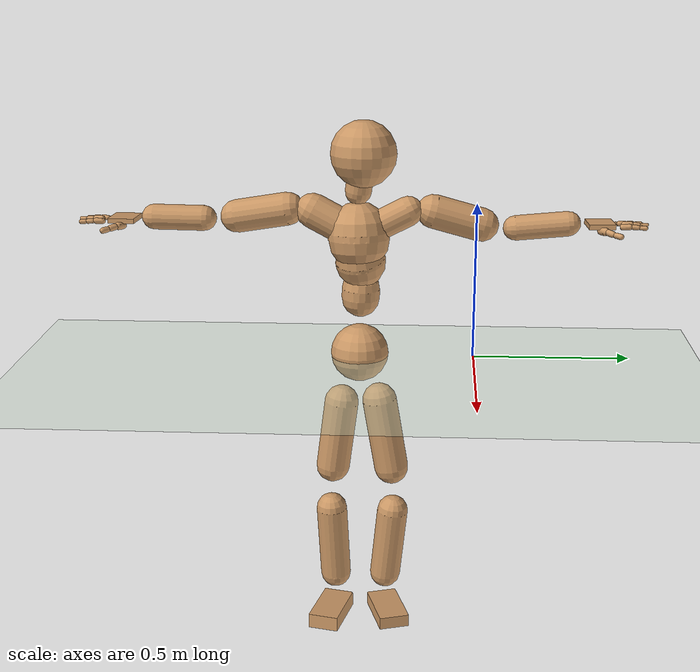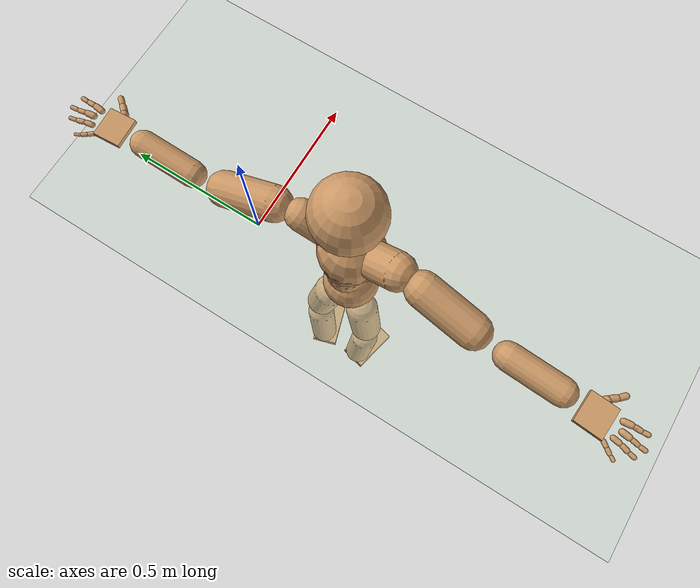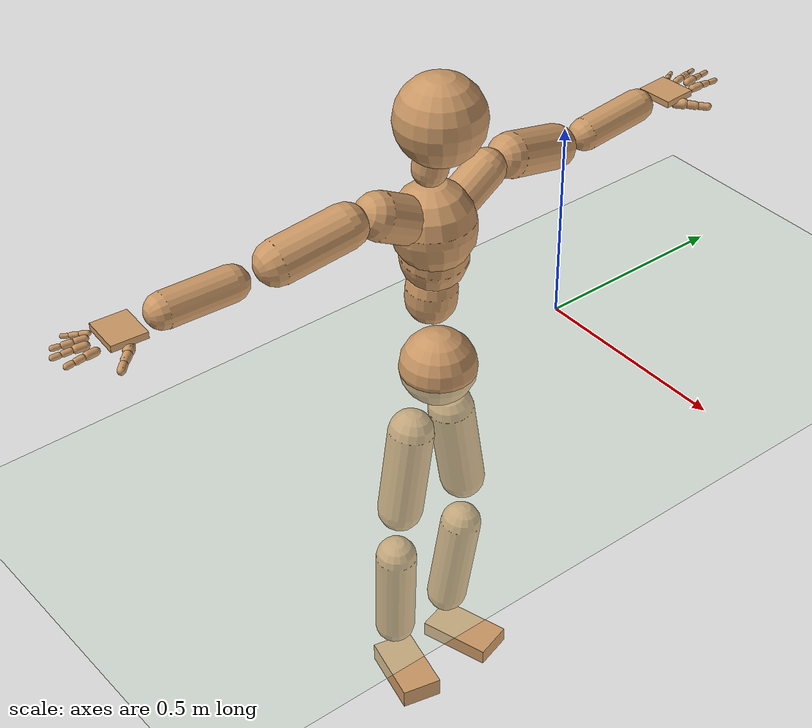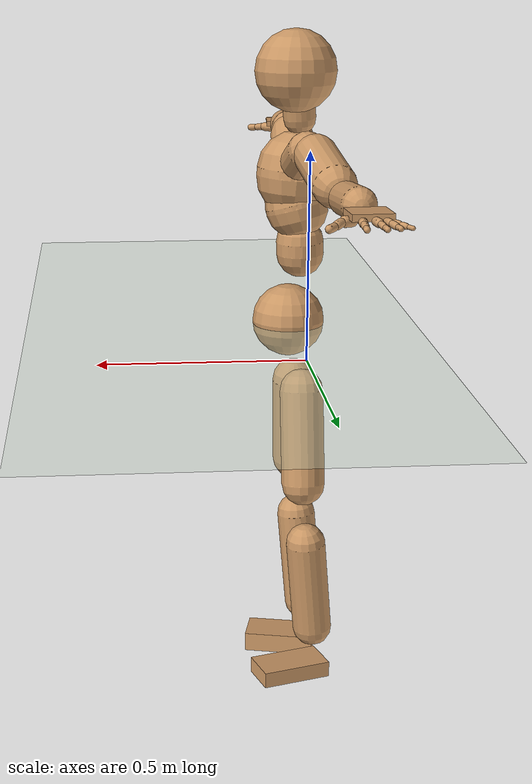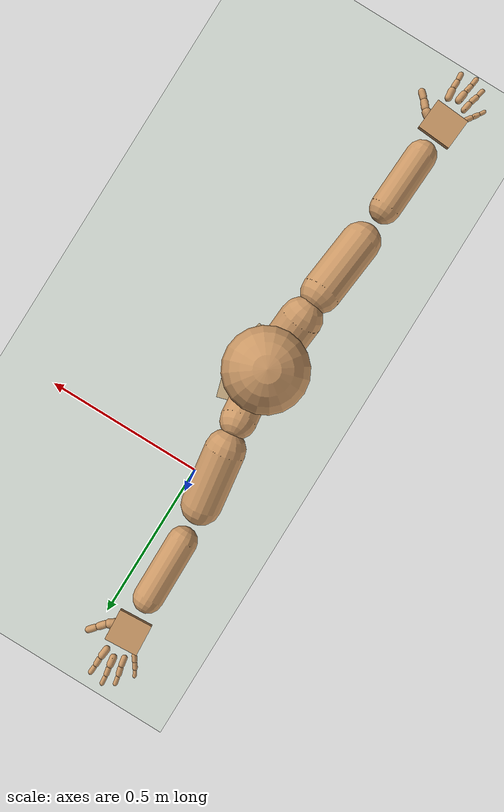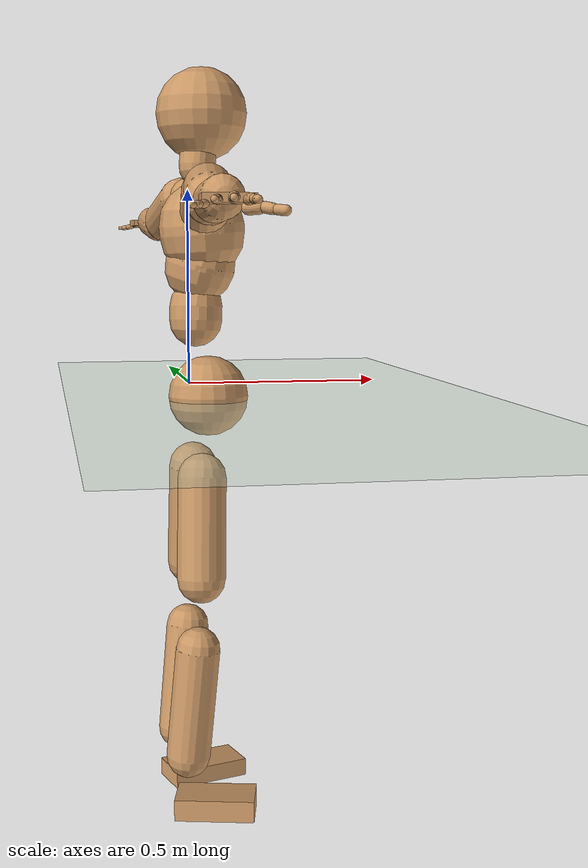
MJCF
<mujoco model="humanoid">
  <compiler coordinate="local" angle="radian"/>
  <default>
    <joint damping="0.0" armature="0.01" stiffness="0.0" limited="true"/>
    <geom conaffinity="1" condim="3" contype="7" margin="0.001" rgba="0.8 0.6 .4 1"/>
  </default>
  <asset>
    <texture type="skybox" builtin="gradient" rgb1=".4 .5 .6" rgb2="0 0 0" width="100" height="100"/>
    <texture builtin="flat" height="1278" mark="cross" markrgb="1 1 1" name="texgeom" random="0.01" rgb1="0.8 0.6 0.4" rgb2="0.8 0.6 0.4" type="cube" width="127"/>
    <texture builtin="checker" height="100" name="texplane" rgb1="0 0 0" rgb2="0.8 0.8 0.8" type="2d" width="100"/>
    <material name="MatPlane" reflectance="0.5" shininess="1" specular="1" texrepeat="60 60" texture="texplane"/>
    <material name="geom" texture="texgeom" texuniform="true"/>
  </asset>
  <worldbody>
    <light cutoff="100" diffuse="1 1 1" dir="-0 0 -1.3" directional="true" exponent="1" pos="0 0 1.3" specular=".1 .1 .1"/>
    <geom conaffinity="1" condim="3" name="floor" pos="0 0 0" rgba="0.8 0.9 0.8 1" size="100 100 .2" type="plane" material="MatPlane"/>
    <body name="Pelvis" pos="0.0008 -0.3688 0.0074">
      <freejoint name="Pelvis"/>
      <geom type="sphere" contype="1" conaffinity="1" density="500" size="0.0938" pos="0.0000 0.0000 0.0000" name="Pelvis"/>
      <body name="L_Hip" pos="-0.029 0.0503 -0.0944">
        <joint name="L_Hip_x" type="hinge" pos="0 0 0" axis="1 0 0" stiffness="800" damping="80" armature="0.02" range="-180.0000 180.0000"/>
        <joint name="L_Hip_y" type="hinge" pos="0 0 0" axis="0 1 0" stiffness="800" damping="80" armature="0.02" range="-180.0000 180.0000"/>
        <joint name="L_Hip_z" type="hinge" pos="0 0 0" axis="0 0 1" stiffness="800" damping="80" armature="0.02" range="-180.0000 180.0000"/>
        <geom type="capsule" contype="1" conaffinity="1" density="500" fromto="-0.0008 0.0136 -0.0818 -0.0033 0.0543 -0.3274" size="0.0568" name="L_Hip"/>
        <body name="L_Knee" pos="-0.0041 0.0679 -0.4092">
          <joint name="L_Knee_x" type="hinge" pos="0 0 0" axis="1 0 0" stiffness="800" damping="80" armature="0.02" range="-180.0000 180.0000"/>
          <joint name="L_Knee_y" type="hinge" pos="0 0 0" axis="0 1 0" stiffness="800" damping="80" armature="0.02" range="-180.0000 180.0000"/>
          <joint name="L_Knee_z" type="hinge" pos="0 0 0" axis="0 0 1" stiffness="800" damping="80" armature="0.02" range="-180.0000 180.0000"/>
          <geom type="capsule" contype="1" conaffinity="1" density="500" fromto="-0.0082 -0.0086 -0.0851 -0.0326 -0.0343 -0.3405" size="0.0523" name="L_Knee"/>
          <body name="L_Ankle" pos="-0.0408 -0.0428 -0.4256">
            <joint name="L_Ankle_x" type="hinge" pos="0 0 0" axis="1 0 0" stiffness="800" damping="80" armature="0.02" range="-180.0000 180.0000"/>
            <joint name="L_Ankle_y" type="hinge" pos="0 0 0" axis="0 1 0" stiffness="800" damping="80" armature="0.02" range="-180.0000 180.0000"/>
            <joint name="L_Ankle_z" type="hinge" pos="0 0 0" axis="0 0 1" stiffness="800" damping="80" armature="0.02" range="-180.0000 180.0000"/>
            <geom type="box" contype="1" conaffinity="1" density="500" pos="0.0684 0.0206 -0.0308" size="0.0941 0.0515 0.0211" quat="0.9893 0.0000 0.0000 0.1460" name="L_Ankle"/>
            <body name="L_Toe" pos="0.1368 0.0413 -0.0615">
              <joint name="L_Toe_x" type="hinge" pos="0 0 0" axis="1 0 0" stiffness="500" damping="50" armature="0.02" range="-180.0000 180.0000"/>
              <joint name="L_Toe_y" type="hinge" pos="0 0 0" axis="0 1 0" stiffness="500" damping="50" armature="0.02" range="-180.0000 180.0000"/>
              <joint name="L_Toe_z" type="hinge" pos="0 0 0" axis="0 0 1" stiffness="500" damping="50" armature="0.02" range="-180.0000 180.0000"/>
              <geom type="box" contype="1" conaffinity="1" density="500" pos="0.0000 0.0000 0.0309" size="0.001 0.0025 0.0011" quat="0.9886 0.0000 0.0000 0.1505" name="L_Toe"/>
            </body>
          </body>
        </body>
      </body>
      <body name="R_Hip" pos="-0.0223 -0.0521 -0.105">
        <joint name="R_Hip_x" type="hinge" pos="0 0 0" axis="1 0 0" stiffness="800" damping="80" armature="0.02" range="-180.0000 180.0000"/>
        <joint name="R_Hip_y" type="hinge" pos="0 0 0" axis="0 1 0" stiffness="800" damping="80" armature="0.02" range="-180.0000 180.0000"/>
        <joint name="R_Hip_z" type="hinge" pos="0 0 0" axis="0 0 1" stiffness="800" damping="80" armature="0.02" range="-180.0000 180.0000"/>
        <geom type="capsule" contype="1" conaffinity="1" density="500" fromto="-0.0023 -0.0104 -0.0783 -0.0093 -0.0417 -0.3134" size="0.0565" name="R_Hip"/>
        <body name="R_Knee" pos="-0.0117 -0.0521 -0.3917">
          <joint name="R_Knee_x" type="hinge" pos="0 0 0" axis="1 0 0" stiffness="800" damping="80" armature="0.02" range="-180.0000 180.0000"/>
          <joint name="R_Knee_y" type="hinge" pos="0 0 0" axis="0 1 0" stiffness="800" damping="80" armature="0.02" range="-180.0000 180.0000"/>
          <joint name="R_Knee_z" type="hinge" pos="0 0 0" axis="0 0 1" stiffness="800" damping="80" armature="0.02" range="-180.0000 180.0000"/>
          <geom type="capsule" contype="1" conaffinity="1" density="500" fromto="-0.0079 0.0034 -0.0880 -0.0315 0.0135 -0.3518" size="0.0518" name="R_Knee"/>
          <body name="R_Ankle" pos="-0.0393 0.0169 -0.4398">
            <joint name="R_Ankle_x" type="hinge" pos="0 0 0" axis="1 0 0" stiffness="800" damping="80" armature="0.02" range="-180.0000 180.0000"/>
            <joint name="R_Ankle_y" type="hinge" pos="0 0 0" axis="0 1 0" stiffness="800" damping="80" armature="0.02" range="-180.0000 180.0000"/>
            <joint name="R_Ankle_z" type="hinge" pos="0 0 0" axis="0 0 1" stiffness="800" damping="80" armature="0.02" range="-180.0000 180.0000"/>
            <geom type="box" contype="1" conaffinity="1" density="500" pos="0.0716 -0.0166 -0.0303" size="0.0941 0.0515 0.0256" quat="0.9935 0.0000 0.0000 -0.1138" name="R_Ankle"/>
            <body name="R_Toe" pos="0.1432 -0.0332 -0.0607">
              <joint name="R_Toe_x" type="hinge" pos="0 0 0" axis="1 0 0" stiffness="500" damping="50" armature="0.02" range="-180.0000 180.0000"/>
              <joint name="R_Toe_y" type="hinge" pos="0 0 0" axis="0 1 0" stiffness="500" damping="50" armature="0.02" range="-180.0000 180.0000"/>
              <joint name="R_Toe_z" type="hinge" pos="0 0 0" axis="0 0 1" stiffness="500" damping="50" armature="0.02" range="-180.0000 180.0000"/>
              <geom type="box" contype="1" conaffinity="1" density="500" pos="0.0000 0.0000 0.0260" size="0.001 0.0025 0.0011" quat="0.9944 0.0000 0.0000 -0.1058" name="R_Toe"/>
            </body>
          </body>
        </body>
      </body>
      <body name="Torso" pos="-0.0307 -0.0014 0.1133">
        <joint name="Torso_x" type="hinge" pos="0 0 0" axis="1 0 0" stiffness="1000" damping="100" armature="0.02" range="-180.0000 180.0000"/>
        <joint name="Torso_y" type="hinge" pos="0 0 0" axis="0 1 0" stiffness="1000" damping="100" armature="0.02" range="-180.0000 180.0000"/>
        <joint name="Torso_z" type="hinge" pos="0 0 0" axis="0 0 1" stiffness="1000" damping="100" armature="0.02" range="-180.0000 180.0000"/>
        <geom type="capsule" contype="1" conaffinity="1" density="500" fromto="0.0033 0.0045 0.0955 0.0022 0.0030 0.0637" size="0.0613" name="Torso"/>
        <body name="Spine" pos="0.0055 0.0075 0.1591">
          <joint name="Spine_x" type="hinge" pos="0 0 0" axis="1 0 0" stiffness="1000" damping="100" armature="0.02" range="-180.0000 180.0000"/>
          <joint name="Spine_y" type="hinge" pos="0 0 0" axis="0 1 0" stiffness="1000" damping="100" armature="0.02" range="-180.0000 180.0000"/>
          <joint name="Spine_z" type="hinge" pos="0 0 0" axis="0 0 1" stiffness="1000" damping="100" armature="0.02" range="-180.0000 180.0000"/>
          <geom type="capsule" contype="1" conaffinity="1" density="500" fromto="0.0096 -0.0045 0.0358 0.0064 -0.0030 0.0239" size="0.0804" name="Spine"/>
          <body name="Chest" pos="0.016 -0.0074 0.0597">
            <joint name="Chest_x" type="hinge" pos="0 0 0" axis="1 0 0" stiffness="1000" damping="100" armature="0.02" range="-180.0000 180.0000"/>
            <joint name="Chest_y" type="hinge" pos="0 0 0" axis="0 1 0" stiffness="1000" damping="100" armature="0.02" range="-180.0000 180.0000"/>
            <joint name="Chest_z" type="hinge" pos="0 0 0" axis="0 0 1" stiffness="1000" damping="100" armature="0.02" range="-180.0000 180.0000"/>
            <geom type="capsule" contype="1" conaffinity="1" density="500" fromto="-0.0048 -0.0016 0.0629 -0.0032 -0.0010 0.0419" size="0.0983" name="Chest"/>
            <body name="Neck" pos="-0.0177 -0.0076 0.1623">
              <joint name="Neck_x" type="hinge" pos="0 0 0" axis="1 0 0" stiffness="500" damping="50" armature="0.02" range="-180.0000 180.0000"/>
              <joint name="Neck_y" type="hinge" pos="0 0 0" axis="0 1 0" stiffness="500" damping="50" armature="0.02" range="-180.0000 180.0000"/>
              <joint name="Neck_z" type="hinge" pos="0 0 0" axis="0 0 1" stiffness="500" damping="50" armature="0.02" range="-180.0000 180.0000"/>
              <geom type="capsule" contype="1" conaffinity="1" density="500" fromto="0.0033 0.0044 0.0300 0.0132 0.0178 0.1200" size="0.0418" name="Neck"/>
              <body name="Head" pos="0.0165 0.0222 0.1499">
                <joint name="Head_x" type="hinge" pos="0 0 0" axis="1 0 0" stiffness="500" damping="50" armature="0.02" range="-180.0000 180.0000"/>
                <joint name="Head_y" type="hinge" pos="0 0 0" axis="0 1 0" stiffness="500" damping="50" armature="0.02" range="-180.0000 180.0000"/>
                <joint name="Head_z" type="hinge" pos="0 0 0" axis="0 0 1" stiffness="500" damping="50" armature="0.02" range="-180.0000 180.0000"/>
                <geom type="sphere" contype="1" conaffinity="1" density="500" size="0.1045" pos="0.0000 0.0000 0.0000" name="Head"/>
              </body>
            </body>
            <body name="L_Thorax" pos="-0.001 0.0421 0.0759">
              <joint name="L_Thorax_x" type="hinge" pos="0 0 0" axis="1 0 0" stiffness="500" damping="50" armature="0.02" range="-180.0000 180.0000"/>
              <joint name="L_Thorax_y" type="hinge" pos="0 0 0" axis="0 1 0" stiffness="500" damping="50" armature="0.02" range="-180.0000 180.0000"/>
              <joint name="L_Thorax_z" type="hinge" pos="0 0 0" axis="0 0 1" stiffness="500" damping="50" armature="0.02" range="-180.0000 180.0000"/>
              <geom type="capsule" contype="1" conaffinity="1" density="500" fromto="-0.0030 0.0280 0.0139 -0.0119 0.1118 0.0558" size="0.0474" name="L_Thorax"/>
              <body name="L_Shoulder" pos="-0.0149 0.1398 0.0697">
                <joint name="L_Shoulder_x" type="hinge" pos="0 0 0" axis="1 0 0" stiffness="500" damping="50" armature="0.02" range="-180.0000 180.0000"/>
                <joint name="L_Shoulder_y" type="hinge" pos="0 0 0" axis="0 1 0" stiffness="500" damping="50" armature="0.02" range="-180.0000 180.0000"/>
                <joint name="L_Shoulder_z" type="hinge" pos="0 0 0" axis="0 0 1" stiffness="500" damping="50" armature="0.02" range="-180.0000 180.0000"/>
                <geom type="capsule" contype="1" conaffinity="1" density="500" fromto="-0.0078 0.0516 -0.0157 -0.0313 0.2063 -0.0626" size="0.0533" name="L_Shoulder"/>
                <body name="L_Elbow" pos="-0.0392 0.2579 -0.0783">
                  <joint name="L_Elbow_x" type="hinge" pos="0 0 0" axis="1 0 0" stiffness="500" damping="50" armature="0.02" range="-720.0000 720.0000"/>
                  <joint name="L_Elbow_y" type="hinge" pos="0 0 0" axis="0 1 0" stiffness="500" damping="50" armature="0.02" range="-720.0000 720.0000"/>
                  <joint name="L_Elbow_z" type="hinge" pos="0 0 0" axis="0 0 1" stiffness="500" damping="50" armature="0.02" range="-720.0000 720.0000"/>
                  <geom type="capsule" contype="1" conaffinity="1" density="500" fromto="-0.0005 0.0554 0.0050 -0.0020 0.2216 0.0202" size="0.0398" name="L_Elbow"/>
                  <body name="L_Wrist" pos="-0.0025 0.277 0.0252">
                    <joint name="L_Wrist_x" type="hinge" pos="0 0 0" axis="1 0 0" stiffness="300" damping="30" armature="0.02" range="-180.0000 180.0000"/>
                    <joint name="L_Wrist_y" type="hinge" pos="0 0 0" axis="0 1 0" stiffness="300" damping="30" armature="0.02" range="-180.0000 180.0000"/>
                    <joint name="L_Wrist_z" type="hinge" pos="0 0 0" axis="0 0 1" stiffness="300" damping="30" armature="0.02" range="-180.0000 180.0000"/>
                    <geom type="box" contype="1" conaffinity="1" density="500" pos="-0.0029 0.0457 -0.0061" size="0.0422 0.0455 0.0078" quat="0.7290 0.0000 0.0000 -0.6845" name="L_Wrist"/>
                    <body name="L_Index1" pos="0.0207 0.1072 -0.0096">
                      <joint name="L_Index1_x" type="hinge" pos="0 0 0" axis="1 0 0" stiffness="100" damping="10" armature="0.02" range="-180.0000 180.0000"/>
                      <joint name="L_Index1_y" type="hinge" pos="0 0 0" axis="0 1 0" stiffness="100" damping="10" armature="0.02" range="-180.0000 180.0000"/>
                      <joint name="L_Index1_z" type="hinge" pos="0 0 0" axis="0 0 1" stiffness="100" damping="10" armature="0.02" range="-180.0000 180.0000"/>
                      <geom type="capsule" contype="1" conaffinity="1" density="500" fromto="0.0007 0.0067 0.0003 0.0028 0.0270 0.0012" size="0.0094" name="L_Index1"/>
                      <body name="L_Index2" pos="0.0035 0.0337 0.0015">
                        <joint name="L_Index2_x" type="hinge" pos="0 0 0" axis="1 0 0" stiffness="100" damping="10" armature="0.02" range="-180.0000 180.0000"/>
                        <joint name="L_Index2_y" type="hinge" pos="0 0 0" axis="0 1 0" stiffness="100" damping="10" armature="0.02" range="-180.0000 180.0000"/>
                        <joint name="L_Index2_z" type="hinge" pos="0 0 0" axis="0 0 1" stiffness="100" damping="10" armature="0.02" range="-180.0000 180.0000"/>
                        <geom type="capsule" contype="1" conaffinity="1" density="500" fromto="-0.0001 0.0048 -0.0006 -0.0003 0.0191 -0.0022" size="0.0078" name="L_Index2"/>
                        <body name="L_Index3" pos="-0.0003 0.0239 -0.0028">
                          <joint name="L_Index3_x" type="hinge" pos="0 0 0" axis="1 0 0" stiffness="100" damping="10" armature="0.02" range="-180.0000 180.0000"/>
                          <joint name="L_Index3_y" type="hinge" pos="0 0 0" axis="0 1 0" stiffness="100" damping="10" armature="0.02" range="-180.0000 180.0000"/>
                          <joint name="L_Index3_z" type="hinge" pos="0 0 0" axis="0 0 1" stiffness="100" damping="10" armature="0.02" range="-180.0000 180.0000"/>
                          <geom type="capsule" contype="1" conaffinity="1" density="500" fromto="0.0003 0.0052 -0.0002 0.0013 0.0207 -0.0006" size="0.0067" name="L_Index3"/>
                        </body>
                      </body>
                    </body>
                    <body name="L_Middle1" pos="-0.0035 0.1154 -0.0069">
                      <joint name="L_Middle1_x" type="hinge" pos="0 0 0" axis="1 0 0" stiffness="100" damping="10" armature="0.02" range="-180.0000 180.0000"/>
                      <joint name="L_Middle1_y" type="hinge" pos="0 0 0" axis="0 1 0" stiffness="100" damping="10" armature="0.02" range="-180.0000 180.0000"/>
                      <joint name="L_Middle1_z" type="hinge" pos="0 0 0" axis="0 0 1" stiffness="100" damping="10" armature="0.02" range="-180.0000 180.0000"/>
                      <geom type="capsule" contype="1" conaffinity="1" density="500" fromto="-0.0009 0.0064 0.0001 -0.0035 0.0258 0.0002" size="0.0096" name="L_Middle1"/>
                      <body name="L_Middle2" pos="-0.0044 0.0322 0.0003">
                        <joint name="L_Middle2_x" type="hinge" pos="0 0 0" axis="1 0 0" stiffness="100" damping="10" armature="0.02" range="-180.0000 180.0000"/>
                        <joint name="L_Middle2_y" type="hinge" pos="0 0 0" axis="0 1 0" stiffness="100" damping="10" armature="0.02" range="-180.0000 180.0000"/>
                        <joint name="L_Middle2_z" type="hinge" pos="0 0 0" axis="0 0 1" stiffness="100" damping="10" armature="0.02" range="-180.0000 180.0000"/>
                        <geom type="capsule" contype="1" conaffinity="1" density="500" fromto="-0.0009 0.0050 -0.0005 -0.0036 0.0198 -0.0021" size="0.0072" name="L_Middle2"/>
                        <body name="L_Middle3" pos="-0.0045 0.0248 -0.0026">
                          <joint name="L_Middle3_x" type="hinge" pos="0 0 0" axis="1 0 0" stiffness="100" damping="10" armature="0.02" range="-180.0000 180.0000"/>
                          <joint name="L_Middle3_y" type="hinge" pos="0 0 0" axis="0 1 0" stiffness="100" damping="10" armature="0.02" range="-180.0000 180.0000"/>
                          <joint name="L_Middle3_z" type="hinge" pos="0 0 0" axis="0 0 1" stiffness="100" damping="10" armature="0.02" range="-180.0000 180.0000"/>
                          <geom type="capsule" contype="1" conaffinity="1" density="500" fromto="-0.0005 0.0054 -0.0001 -0.0020 0.0214 -0.0005" size="0.0064" name="L_Middle3"/>
                        </body>
                      </body>
                    </body>
                    <body name="L_Pinky1" pos="-0.0454 0.0892 -0.0151">
                      <joint name="L_Pinky1_x" type="hinge" pos="0 0 0" axis="1 0 0" stiffness="100" damping="10" armature="0.02" range="-180.0000 180.0000"/>
                      <joint name="L_Pinky1_y" type="hinge" pos="0 0 0" axis="0 1 0" stiffness="100" damping="10" armature="0.02" range="-180.0000 180.0000"/>
                      <joint name="L_Pinky1_z" type="hinge" pos="0 0 0" axis="0 0 1" stiffness="100" damping="10" armature="0.02" range="-180.0000 180.0000"/>
                      <geom type="capsule" contype="1" conaffinity="1" density="500" fromto="-0.0024 0.0034 -0.0003 -0.0096 0.0137 -0.0013" size="0.0069" name="L_Pinky1"/>
                      <body name="L_Pinky2" pos="-0.012 0.0171 -0.0017">
                        <joint name="L_Pinky2_x" type="hinge" pos="0 0 0" axis="1 0 0" stiffness="100" damping="10" armature="0.02" range="-180.0000 180.0000"/>
                        <joint name="L_Pinky2_y" type="hinge" pos="0 0 0" axis="0 1 0" stiffness="100" damping="10" armature="0.02" range="-180.0000 180.0000"/>
                        <joint name="L_Pinky2_z" type="hinge" pos="0 0 0" axis="0 0 1" stiffness="100" damping="10" armature="0.02" range="-180.0000 180.0000"/>
                        <geom type="capsule" contype="1" conaffinity="1" density="500" fromto="-0.0023 0.0034 -0.0004 -0.0091 0.0134 -0.0016" size="0.0066" name="L_Pinky2"/>
                        <body name="L_Pinky3" pos="-0.0114 0.0168 -0.0019">
                          <joint name="L_Pinky3_x" type="hinge" pos="0 0 0" axis="1 0 0" stiffness="100" damping="10" armature="0.02" range="-180.0000 180.0000"/>
                          <joint name="L_Pinky3_y" type="hinge" pos="0 0 0" axis="0 1 0" stiffness="100" damping="10" armature="0.02" range="-180.0000 180.0000"/>
                          <joint name="L_Pinky3_z" type="hinge" pos="0 0 0" axis="0 0 1" stiffness="100" damping="10" armature="0.02" range="-180.0000 180.0000"/>
                          <geom type="capsule" contype="1" conaffinity="1" density="500" fromto="-0.0019 0.0038 0.0000 -0.0075 0.0150 0.0000" size="0.005" name="L_Pinky3"/>
                        </body>
                      </body>
                    </body>
                    <body name="L_Ring1" pos="-0.0279 0.103 -0.0097">
                      <joint name="L_Ring1_x" type="hinge" pos="0 0 0" axis="1 0 0" stiffness="100" damping="10" armature="0.02" range="-180.0000 180.0000"/>
                      <joint name="L_Ring1_y" type="hinge" pos="0 0 0" axis="0 1 0" stiffness="100" damping="10" armature="0.02" range="-180.0000 180.0000"/>
                      <joint name="L_Ring1_z" type="hinge" pos="0 0 0" axis="0 0 1" stiffness="100" damping="10" armature="0.02" range="-180.0000 180.0000"/>
                      <geom type="capsule" contype="1" conaffinity="1" density="500" fromto="-0.0010 0.0060 0.0001 -0.0041 0.0238 0.0005" size="0.0081" name="L_Ring1"/>
                      <body name="L_Ring2" pos="-0.0051 0.0298 0.0006">
                        <joint name="L_Ring2_x" type="hinge" pos="0 0 0" axis="1 0 0" stiffness="100" damping="10" armature="0.02" range="-180.0000 180.0000"/>
                        <joint name="L_Ring2_y" type="hinge" pos="0 0 0" axis="0 1 0" stiffness="100" damping="10" armature="0.02" range="-180.0000 180.0000"/>
                        <joint name="L_Ring2_z" type="hinge" pos="0 0 0" axis="0 0 1" stiffness="100" damping="10" armature="0.02" range="-180.0000 180.0000"/>
                        <geom type="capsule" contype="1" conaffinity="1" density="500" fromto="-0.0014 0.0048 -0.0005 -0.0055 0.0193 -0.0018" size="0.0077" name="L_Ring2"/>
                        <body name="L_Ring3" pos="-0.0069 0.0242 -0.0023">
                          <joint name="L_Ring3_x" type="hinge" pos="0 0 0" axis="1 0 0" stiffness="100" damping="10" armature="0.02" range="-180.0000 180.0000"/>
                          <joint name="L_Ring3_y" type="hinge" pos="0 0 0" axis="0 1 0" stiffness="100" damping="10" armature="0.02" range="-180.0000 180.0000"/>
                          <joint name="L_Ring3_z" type="hinge" pos="0 0 0" axis="0 0 1" stiffness="100" damping="10" armature="0.02" range="-180.0000 180.0000"/>
                          <geom type="capsule" contype="1" conaffinity="1" density="500" fromto="-0.0010 0.0052 -0.0001 -0.0039 0.0209 -0.0002" size="0.006" name="L_Ring3"/>
                        </body>
                      </body>
                    </body>
                    <body name="L_Thumb1" pos="0.0272 0.0426 -0.0201">
                      <joint name="L_Thumb1_x" type="hinge" pos="0 0 0" axis="1 0 0" stiffness="100" damping="10" armature="0.02" range="-180.0000 180.0000"/>
                      <joint name="L_Thumb1_y" type="hinge" pos="0 0 0" axis="0 1 0" stiffness="100" damping="10" armature="0.02" range="-180.0000 180.0000"/>
                      <joint name="L_Thumb1_z" type="hinge" pos="0 0 0" axis="0 0 1" stiffness="100" damping="10" armature="0.02" range="-180.0000 180.0000"/>
                      <geom type="capsule" contype="1" conaffinity="1" density="500" fromto="0.0055 0.0035 0.0003 0.0218 0.0142 0.0012" size="0.0126" name="L_Thumb1"/>
                      <body name="L_Thumb2" pos="0.0273 0.0177 0.0015">
                        <joint name="L_Thumb2_x" type="hinge" pos="0 0 0" axis="1 0 0" stiffness="100" damping="10" armature="0.02" range="-180.0000 180.0000"/>
                        <joint name="L_Thumb2_y" type="hinge" pos="0 0 0" axis="0 1 0" stiffness="100" damping="10" armature="0.02" range="-180.0000 180.0000"/>
                        <joint name="L_Thumb2_z" type="hinge" pos="0 0 0" axis="0 0 1" stiffness="100" damping="10" armature="0.02" range="-180.0000 180.0000"/>
                        <geom type="capsule" contype="1" conaffinity="1" density="500" fromto="0.0034 0.0043 -0.0010 0.0138 0.0171 -0.0038" size="0.0101" name="L_Thumb2"/>
                        <body name="L_Thumb3" pos="0.0172 0.0214 -0.0048">
                          <joint name="L_Thumb3_x" type="hinge" pos="0 0 0" axis="1 0 0" stiffness="100" damping="10" armature="0.02" range="-180.0000 180.0000"/>
                          <joint name="L_Thumb3_y" type="hinge" pos="0 0 0" axis="0 1 0" stiffness="100" damping="10" armature="0.02" range="-180.0000 180.0000"/>
                          <joint name="L_Thumb3_z" type="hinge" pos="0 0 0" axis="0 0 1" stiffness="100" damping="10" armature="0.02" range="-180.0000 180.0000"/>
                          <geom type="capsule" contype="1" conaffinity="1" density="500" fromto="0.0038 0.0047 -0.0006 0.0154 0.0187 -0.0022" size="0.0091" name="L_Thumb3"/>
                        </body>
                      </body>
                    </body>
                  </body>
                </body>
              </body>
            </body>
            <body name="R_Thorax" pos="-0.0053 -0.0423 0.0762">
              <joint name="R_Thorax_x" type="hinge" pos="0 0 0" axis="1 0 0" stiffness="500" damping="50" armature="0.02" range="-180.0000 180.0000"/>
              <joint name="R_Thorax_y" type="hinge" pos="0 0 0" axis="0 1 0" stiffness="500" damping="50" armature="0.02" range="-180.0000 180.0000"/>
              <joint name="R_Thorax_z" type="hinge" pos="0 0 0" axis="0 0 1" stiffness="500" damping="50" armature="0.02" range="-180.0000 180.0000"/>
              <geom type="capsule" contype="1" conaffinity="1" density="500" fromto="-0.0017 -0.0261 0.0135 -0.0069 -0.1043 0.0541" size="0.0556" name="R_Thorax"/>
              <body name="R_Shoulder" pos="-0.0086 -0.1304 0.0677">
                <joint name="R_Shoulder_x" type="hinge" pos="0 0 0" axis="1 0 0" stiffness="500" damping="50" armature="0.02" range="-180.0000 180.0000"/>
                <joint name="R_Shoulder_y" type="hinge" pos="0 0 0" axis="0 1 0" stiffness="500" damping="50" armature="0.02" range="-180.0000 180.0000"/>
                <joint name="R_Shoulder_z" type="hinge" pos="0 0 0" axis="0 0 1" stiffness="500" damping="50" armature="0.02" range="-180.0000 180.0000"/>
                <geom type="capsule" contype="1" conaffinity="1" density="500" fromto="-0.0061 -0.0550 -0.0099 -0.0244 -0.2202 -0.0396" size="0.0525" name="R_Shoulder"/>
                <body name="R_Elbow" pos="-0.0304 -0.2752 -0.0495">
                  <joint name="R_Elbow_x" type="hinge" pos="0 0 0" axis="1 0 0" stiffness="500" damping="50" armature="0.02" range="-720.0000 720.0000"/>
                  <joint name="R_Elbow_y" type="hinge" pos="0 0 0" axis="0 1 0" stiffness="500" damping="50" armature="0.02" range="-720.0000 720.0000"/>
                  <joint name="R_Elbow_z" type="hinge" pos="0 0 0" axis="0 0 1" stiffness="500" damping="50" armature="0.02" range="-720.0000 720.0000"/>
                  <geom type="capsule" contype="1" conaffinity="1" density="500" fromto="-0.0024 -0.0536 0.0003 -0.0097 -0.2146 0.0014" size="0.0408" name="R_Elbow"/>
                  <body name="R_Wrist" pos="-0.0121 -0.2682 0.0017">
                    <joint name="R_Wrist_x" type="hinge" pos="0 0 0" axis="1 0 0" stiffness="300" damping="30" armature="0.02" range="-180.0000 180.0000"/>
                    <joint name="R_Wrist_y" type="hinge" pos="0 0 0" axis="0 1 0" stiffness="300" damping="30" armature="0.02" range="-180.0000 180.0000"/>
                    <joint name="R_Wrist_z" type="hinge" pos="0 0 0" axis="0 0 1" stiffness="300" damping="30" armature="0.02" range="-180.0000 180.0000"/>
                    <geom type="box" contype="1" conaffinity="1" density="500" pos="-0.0034 -0.0455 -0.0078" size="0.0422 0.0469 0.0079" quat="0.7327 0.0000 0.0000 0.6805" name="R_Wrist"/>
                    <body name="R_Index1" pos="0.0198 -0.1068 -0.013">
                      <joint name="R_Index1_x" type="hinge" pos="0 0 0" axis="1 0 0" stiffness="100" damping="10" armature="0.02" range="-180.0000 180.0000"/>
                      <joint name="R_Index1_y" type="hinge" pos="0 0 0" axis="0 1 0" stiffness="100" damping="10" armature="0.02" range="-180.0000 180.0000"/>
                      <joint name="R_Index1_z" type="hinge" pos="0 0 0" axis="0 0 1" stiffness="100" damping="10" armature="0.02" range="-180.0000 180.0000"/>
                      <geom type="capsule" contype="1" conaffinity="1" density="500" fromto="0.0007 -0.0067 0.0003 0.0028 -0.0270 0.0012" size="0.0094" name="R_Index1"/>
                      <body name="R_Index2" pos="0.0035 -0.0337 0.0015">
                        <joint name="R_Index2_x" type="hinge" pos="0 0 0" axis="1 0 0" stiffness="100" damping="10" armature="0.02" range="-180.0000 180.0000"/>
                        <joint name="R_Index2_y" type="hinge" pos="0 0 0" axis="0 1 0" stiffness="100" damping="10" armature="0.02" range="-180.0000 180.0000"/>
                        <joint name="R_Index2_z" type="hinge" pos="0 0 0" axis="0 0 1" stiffness="100" damping="10" armature="0.02" range="-180.0000 180.0000"/>
                        <geom type="capsule" contype="1" conaffinity="1" density="500" fromto="-0.0001 -0.0048 -0.0006 -0.0003 -0.0191 -0.0022" size="0.0078" name="R_Index2"/>
                        <body name="R_Index3" pos="-0.0003 -0.0239 -0.0028">
                          <joint name="R_Index3_x" type="hinge" pos="0 0 0" axis="1 0 0" stiffness="100" damping="10" armature="0.02" range="-180.0000 180.0000"/>
                          <joint name="R_Index3_y" type="hinge" pos="0 0 0" axis="0 1 0" stiffness="100" damping="10" armature="0.02" range="-180.0000 180.0000"/>
                          <joint name="R_Index3_z" type="hinge" pos="0 0 0" axis="0 0 1" stiffness="100" damping="10" armature="0.02" range="-180.0000 180.0000"/>
                          <geom type="capsule" contype="1" conaffinity="1" density="500" fromto="0.0003 -0.0044 -0.0002 0.0013 -0.0175 -0.0006" size="0.007" name="R_Index3"/>
                        </body>
                      </body>
                    </body>
                    <body name="R_Middle1" pos="-0.0045 -0.115 -0.0103">
                      <joint name="R_Middle1_x" type="hinge" pos="0 0 0" axis="1 0 0" stiffness="100" damping="10" armature="0.02" range="-180.0000 180.0000"/>
                      <joint name="R_Middle1_y" type="hinge" pos="0 0 0" axis="0 1 0" stiffness="100" damping="10" armature="0.02" range="-180.0000 180.0000"/>
                      <joint name="R_Middle1_z" type="hinge" pos="0 0 0" axis="0 0 1" stiffness="100" damping="10" armature="0.02" range="-180.0000 180.0000"/>
                      <geom type="capsule" contype="1" conaffinity="1" density="500" fromto="-0.0009 -0.0064 0.0001 -0.0035 -0.0258 0.0002" size="0.0096" name="R_Middle1"/>
                      <body name="R_Middle2" pos="-0.0044 -0.0322 0.0003">
                        <joint name="R_Middle2_x" type="hinge" pos="0 0 0" axis="1 0 0" stiffness="100" damping="10" armature="0.02" range="-180.0000 180.0000"/>
                        <joint name="R_Middle2_y" type="hinge" pos="0 0 0" axis="0 1 0" stiffness="100" damping="10" armature="0.02" range="-180.0000 180.0000"/>
                        <joint name="R_Middle2_z" type="hinge" pos="0 0 0" axis="0 0 1" stiffness="100" damping="10" armature="0.02" range="-180.0000 180.0000"/>
                        <geom type="capsule" contype="1" conaffinity="1" density="500" fromto="-0.0009 -0.0050 -0.0005 -0.0036 -0.0198 -0.0021" size="0.0072" name="R_Middle2"/>
                        <body name="R_Middle3" pos="-0.0045 -0.0248 -0.0026">
                          <joint name="R_Middle3_x" type="hinge" pos="0 0 0" axis="1 0 0" stiffness="100" damping="10" armature="0.02" range="-180.0000 180.0000"/>
                          <joint name="R_Middle3_y" type="hinge" pos="0 0 0" axis="0 1 0" stiffness="100" damping="10" armature="0.02" range="-180.0000 180.0000"/>
                          <joint name="R_Middle3_z" type="hinge" pos="0 0 0" axis="0 0 1" stiffness="100" damping="10" armature="0.02" range="-180.0000 180.0000"/>
                          <geom type="capsule" contype="1" conaffinity="1" density="500" fromto="-0.0005 -0.0046 -0.0001 -0.0020 -0.0182 -0.0005" size="0.0067" name="R_Middle3"/>
                        </body>
                      </body>
                    </body>
                    <body name="R_Pinky1" pos="-0.0463 -0.0888 -0.0185">
                      <joint name="R_Pinky1_x" type="hinge" pos="0 0 0" axis="1 0 0" stiffness="100" damping="10" armature="0.02" range="-180.0000 180.0000"/>
                      <joint name="R_Pinky1_y" type="hinge" pos="0 0 0" axis="0 1 0" stiffness="100" damping="10" armature="0.02" range="-180.0000 180.0000"/>
                      <joint name="R_Pinky1_z" type="hinge" pos="0 0 0" axis="0 0 1" stiffness="100" damping="10" armature="0.02" range="-180.0000 180.0000"/>
                      <geom type="capsule" contype="1" conaffinity="1" density="500" fromto="-0.0024 -0.0034 -0.0003 -0.0096 -0.0137 -0.0013" size="0.0069" name="R_Pinky1"/>
                      <body name="R_Pinky2" pos="-0.012 -0.0171 -0.0017">
                        <joint name="R_Pinky2_x" type="hinge" pos="0 0 0" axis="1 0 0" stiffness="100" damping="10" armature="0.02" range="-180.0000 180.0000"/>
                        <joint name="R_Pinky2_y" type="hinge" pos="0 0 0" axis="0 1 0" stiffness="100" damping="10" armature="0.02" range="-180.0000 180.0000"/>
                        <joint name="R_Pinky2_z" type="hinge" pos="0 0 0" axis="0 0 1" stiffness="100" damping="10" armature="0.02" range="-180.0000 180.0000"/>
                        <geom type="capsule" contype="1" conaffinity="1" density="500" fromto="-0.0023 -0.0034 -0.0004 -0.0091 -0.0134 -0.0016" size="0.0066" name="R_Pinky2"/>
                        <body name="R_Pinky3" pos="-0.0114 -0.0168 -0.002">
                          <joint name="R_Pinky3_x" type="hinge" pos="0 0 0" axis="1 0 0" stiffness="100" damping="10" armature="0.02" range="-180.0000 180.0000"/>
                          <joint name="R_Pinky3_y" type="hinge" pos="0 0 0" axis="0 1 0" stiffness="100" damping="10" armature="0.02" range="-180.0000 180.0000"/>
                          <joint name="R_Pinky3_z" type="hinge" pos="0 0 0" axis="0 0 1" stiffness="100" damping="10" armature="0.02" range="-180.0000 180.0000"/>
                          <geom type="capsule" contype="1" conaffinity="1" density="500" fromto="-0.0019 -0.0030 0.0000 -0.0075 -0.0118 0.0000" size="0.0053" name="R_Pinky3"/>
                        </body>
                      </body>
                    </body>
                    <body name="R_Ring1" pos="-0.0289 -0.1026 -0.0131">
                      <joint name="R_Ring1_x" type="hinge" pos="0 0 0" axis="1 0 0" stiffness="100" damping="10" armature="0.02" range="-180.0000 180.0000"/>
                      <joint name="R_Ring1_y" type="hinge" pos="0 0 0" axis="0 1 0" stiffness="100" damping="10" armature="0.02" range="-180.0000 180.0000"/>
                      <joint name="R_Ring1_z" type="hinge" pos="0 0 0" axis="0 0 1" stiffness="100" damping="10" armature="0.02" range="-180.0000 180.0000"/>
                      <geom type="capsule" contype="1" conaffinity="1" density="500" fromto="-0.0010 -0.0060 0.0001 -0.0041 -0.0238 0.0005" size="0.0081" name="R_Ring1"/>
                      <body name="R_Ring2" pos="-0.0051 -0.0298 0.0006">
                        <joint name="R_Ring2_x" type="hinge" pos="0 0 0" axis="1 0 0" stiffness="100" damping="10" armature="0.02" range="-180.0000 180.0000"/>
                        <joint name="R_Ring2_y" type="hinge" pos="0 0 0" axis="0 1 0" stiffness="100" damping="10" armature="0.02" range="-180.0000 180.0000"/>
                        <joint name="R_Ring2_z" type="hinge" pos="0 0 0" axis="0 0 1" stiffness="100" damping="10" armature="0.02" range="-180.0000 180.0000"/>
                        <geom type="capsule" contype="1" conaffinity="1" density="500" fromto="-0.0014 -0.0048 -0.0005 -0.0055 -0.0193 -0.0018" size="0.0077" name="R_Ring2"/>
                        <body name="R_Ring3" pos="-0.0069 -0.0242 -0.0023">
                          <joint name="R_Ring3_x" type="hinge" pos="0 0 0" axis="1 0 0" stiffness="100" damping="10" armature="0.02" range="-180.0000 180.0000"/>
                          <joint name="R_Ring3_y" type="hinge" pos="0 0 0" axis="0 1 0" stiffness="100" damping="10" armature="0.02" range="-180.0000 180.0000"/>
                          <joint name="R_Ring3_z" type="hinge" pos="0 0 0" axis="0 0 1" stiffness="100" damping="10" armature="0.02" range="-180.0000 180.0000"/>
                          <geom type="capsule" contype="1" conaffinity="1" density="500" fromto="-0.0010 -0.0044 -0.0001 -0.0039 -0.0177 -0.0002" size="0.0063" name="R_Ring3"/>
                        </body>
                      </body>
                    </body>
                    <body name="R_Thumb1" pos="0.0263 -0.0422 -0.0235">
                      <joint name="R_Thumb1_x" type="hinge" pos="0 0 0" axis="1 0 0" stiffness="100" damping="10" armature="0.02" range="-180.0000 180.0000"/>
                      <joint name="R_Thumb1_y" type="hinge" pos="0 0 0" axis="0 1 0" stiffness="100" damping="10" armature="0.02" range="-180.0000 180.0000"/>
                      <joint name="R_Thumb1_z" type="hinge" pos="0 0 0" axis="0 0 1" stiffness="100" damping="10" armature="0.02" range="-180.0000 180.0000"/>
                      <geom type="capsule" contype="1" conaffinity="1" density="500" fromto="0.0055 -0.0035 0.0003 0.0218 -0.0142 0.0012" size="0.0126" name="R_Thumb1"/>
                      <body name="R_Thumb2" pos="0.0273 -0.0177 0.0015">
                        <joint name="R_Thumb2_x" type="hinge" pos="0 0 0" axis="1 0 0" stiffness="100" damping="10" armature="0.02" range="-180.0000 180.0000"/>
                        <joint name="R_Thumb2_y" type="hinge" pos="0 0 0" axis="0 1 0" stiffness="100" damping="10" armature="0.02" range="-180.0000 180.0000"/>
                        <joint name="R_Thumb2_z" type="hinge" pos="0 0 0" axis="0 0 1" stiffness="100" damping="10" armature="0.02" range="-180.0000 180.0000"/>
                        <geom type="capsule" contype="1" conaffinity="1" density="500" fromto="0.0034 -0.0043 -0.0010 0.0138 -0.0171 -0.0038" size="0.0101" name="R_Thumb2"/>
                        <body name="R_Thumb3" pos="0.0172 -0.0214 -0.0048">
                          <joint name="R_Thumb3_x" type="hinge" pos="0 0 0" axis="1 0 0" stiffness="100" damping="10" armature="0.02" range="-180.0000 180.0000"/>
                          <joint name="R_Thumb3_y" type="hinge" pos="0 0 0" axis="0 1 0" stiffness="100" damping="10" armature="0.02" range="-180.0000 180.0000"/>
                          <joint name="R_Thumb3_z" type="hinge" pos="0 0 0" axis="0 0 1" stiffness="100" damping="10" armature="0.02" range="-180.0000 180.0000"/>
                          <geom type="capsule" contype="1" conaffinity="1" density="500" fromto="0.0038 -0.0039 -0.0006 0.0154 -0.0155 -0.0022" size="0.0094" name="R_Thumb3"/>
                        </body>
                      </body>
                    </body>
                  </body>
                </body>
              </body>
            </body>
          </body>
        </body>
      </body>
    </body>
  </worldbody>
  <actuator>
    <motor name="L_Hip_x" joint="L_Hip_x" gear="500"/>
    <motor name="L_Hip_y" joint="L_Hip_y" gear="500"/>
    <motor name="L_Hip_z" joint="L_Hip_z" gear="500"/>
    <motor name="L_Knee_x" joint="L_Knee_x" gear="500"/>
    <motor name="L_Knee_y" joint="L_Knee_y" gear="500"/>
    <motor name="L_Knee_z" joint="L_Knee_z" gear="500"/>
    <motor name="L_Ankle_x" joint="L_Ankle_x" gear="500"/>
    <motor name="L_Ankle_y" joint="L_Ankle_y" gear="500"/>
    <motor name="L_Ankle_z" joint="L_Ankle_z" gear="500"/>
    <motor name="L_Toe_x" joint="L_Toe_x" gear="500"/>
    <motor name="L_Toe_y" joint="L_Toe_y" gear="500"/>
    <motor name="L_Toe_z" joint="L_Toe_z" gear="500"/>
    <motor name="R_Hip_x" joint="R_Hip_x" gear="500"/>
    <motor name="R_Hip_y" joint="R_Hip_y" gear="500"/>
    <motor name="R_Hip_z" joint="R_Hip_z" gear="500"/>
    <motor name="R_Knee_x" joint="R_Knee_x" gear="500"/>
    <motor name="R_Knee_y" joint="R_Knee_y" gear="500"/>
    <motor name="R_Knee_z" joint="R_Knee_z" gear="500"/>
    <motor name="R_Ankle_x" joint="R_Ankle_x" gear="500"/>
    <motor name="R_Ankle_y" joint="R_Ankle_y" gear="500"/>
    <motor name="R_Ankle_z" joint="R_Ankle_z" gear="500"/>
    <motor name="R_Toe_x" joint="R_Toe_x" gear="500"/>
    <motor name="R_Toe_y" joint="R_Toe_y" gear="500"/>
    <motor name="R_Toe_z" joint="R_Toe_z" gear="500"/>
    <motor name="Torso_x" joint="Torso_x" gear="500"/>
    <motor name="Torso_y" joint="Torso_y" gear="500"/>
    <motor name="Torso_z" joint="Torso_z" gear="500"/>
    <motor name="Spine_x" joint="Spine_x" gear="500"/>
    <motor name="Spine_y" joint="Spine_y" gear="500"/>
    <motor name="Spine_z" joint="Spine_z" gear="500"/>
    <motor name="Chest_x" joint="Chest_x" gear="500"/>
    <motor name="Chest_y" joint="Chest_y" gear="500"/>
    <motor name="Chest_z" joint="Chest_z" gear="500"/>
    <motor name="Neck_x" joint="Neck_x" gear="500"/>
    <motor name="Neck_y" joint="Neck_y" gear="500"/>
    <motor name="Neck_z" joint="Neck_z" gear="500"/>
    <motor name="Head_x" joint="Head_x" gear="500"/>
    <motor name="Head_y" joint="Head_y" gear="500"/>
    <motor name="Head_z" joint="Head_z" gear="500"/>
    <motor name="L_Thorax_x" joint="L_Thorax_x" gear="500"/>
    <motor name="L_Thorax_y" joint="L_Thorax_y" gear="500"/>
    <motor name="L_Thorax_z" joint="L_Thorax_z" gear="500"/>
    <motor name="L_Shoulder_x" joint="L_Shoulder_x" gear="500"/>
    <motor name="L_Shoulder_y" joint="L_Shoulder_y" gear="500"/>
    <motor name="L_Shoulder_z" joint="L_Shoulder_z" gear="500"/>
    <motor name="L_Elbow_x" joint="L_Elbow_x" gear="500"/>
    <motor name="L_Elbow_y" joint="L_Elbow_y" gear="500"/>
    <motor name="L_Elbow_z" joint="L_Elbow_z" gear="500"/>
    <motor name="L_Wrist_x" joint="L_Wrist_x" gear="500"/>
    <motor name="L_Wrist_y" joint="L_Wrist_y" gear="500"/>
    <motor name="L_Wrist_z" joint="L_Wrist_z" gear="500"/>
    <motor name="L_Index1_x" joint="L_Index1_x" gear="500"/>
    <motor name="L_Index1_y" joint="L_Index1_y" gear="500"/>
    <motor name="L_Index1_z" joint="L_Index1_z" gear="500"/>
    <motor name="L_Index2_x" joint="L_Index2_x" gear="500"/>
    <motor name="L_Index2_y" joint="L_Index2_y" gear="500"/>
    <motor name="L_Index2_z" joint="L_Index2_z" gear="500"/>
    <motor name="L_Index3_x" joint="L_Index3_x" gear="500"/>
    <motor name="L_Index3_y" joint="L_Index3_y" gear="500"/>
    <motor name="L_Index3_z" joint="L_Index3_z" gear="500"/>
    <motor name="L_Middle1_x" joint="L_Middle1_x" gear="500"/>
    <motor name="L_Middle1_y" joint="L_Middle1_y" gear="500"/>
    <motor name="L_Middle1_z" joint="L_Middle1_z" gear="500"/>
    <motor name="L_Middle2_x" joint="L_Middle2_x" gear="500"/>
    <motor name="L_Middle2_y" joint="L_Middle2_y" gear="500"/>
    <motor name="L_Middle2_z" joint="L_Middle2_z" gear="500"/>
    <motor name="L_Middle3_x" joint="L_Middle3_x" gear="500"/>
    <motor name="L_Middle3_y" joint="L_Middle3_y" gear="500"/>
    <motor name="L_Middle3_z" joint="L_Middle3_z" gear="500"/>
    <motor name="L_Pinky1_x" joint="L_Pinky1_x" gear="500"/>
    <motor name="L_Pinky1_y" joint="L_Pinky1_y" gear="500"/>
    <motor name="L_Pinky1_z" joint="L_Pinky1_z" gear="500"/>
    <motor name="L_Pinky2_x" joint="L_Pinky2_x" gear="500"/>
    <motor name="L_Pinky2_y" joint="L_Pinky2_y" gear="500"/>
    <motor name="L_Pinky2_z" joint="L_Pinky2_z" gear="500"/>
    <motor name="L_Pinky3_x" joint="L_Pinky3_x" gear="500"/>
    <motor name="L_Pinky3_y" joint="L_Pinky3_y" gear="500"/>
    <motor name="L_Pinky3_z" joint="L_Pinky3_z" gear="500"/>
    <motor name="L_Ring1_x" joint="L_Ring1_x" gear="500"/>
    <motor name="L_Ring1_y" joint="L_Ring1_y" gear="500"/>
    <motor name="L_Ring1_z" joint="L_Ring1_z" gear="500"/>
    <motor name="L_Ring2_x" joint="L_Ring2_x" gear="500"/>
    <motor name="L_Ring2_y" joint="L_Ring2_y" gear="500"/>
    <motor name="L_Ring2_z" joint="L_Ring2_z" gear="500"/>
    <motor name="L_Ring3_x" joint="L_Ring3_x" gear="500"/>
    <motor name="L_Ring3_y" joint="L_Ring3_y" gear="500"/>
    <motor name="L_Ring3_z" joint="L_Ring3_z" gear="500"/>
    <motor name="L_Thumb1_x" joint="L_Thumb1_x" gear="500"/>
    <motor name="L_Thumb1_y" joint="L_Thumb1_y" gear="500"/>
    <motor name="L_Thumb1_z" joint="L_Thumb1_z" gear="500"/>
    <motor name="L_Thumb2_x" joint="L_Thumb2_x" gear="500"/>
    <motor name="L_Thumb2_y" joint="L_Thumb2_y" gear="500"/>
    <motor name="L_Thumb2_z" joint="L_Thumb2_z" gear="500"/>
    <motor name="L_Thumb3_x" joint="L_Thumb3_x" gear="500"/>
    <motor name="L_Thumb3_y" joint="L_Thumb3_y" gear="500"/>
    <motor name="L_Thumb3_z" joint="L_Thumb3_z" gear="500"/>
    <motor name="R_Thorax_x" joint="R_Thorax_x" gear="500"/>
    <motor name="R_Thorax_y" joint="R_Thorax_y" gear="500"/>
    <motor name="R_Thorax_z" joint="R_Thorax_z" gear="500"/>
    <motor name="R_Shoulder_x" joint="R_Shoulder_x" gear="500"/>
    <motor name="R_Shoulder_y" joint="R_Shoulder_y" gear="500"/>
    <motor name="R_Shoulder_z" joint="R_Shoulder_z" gear="500"/>
    <motor name="R_Elbow_x" joint="R_Elbow_x" gear="500"/>
    <motor name="R_Elbow_y" joint="R_Elbow_y" gear="500"/>
    <motor name="R_Elbow_z" joint="R_Elbow_z" gear="500"/>
    <motor name="R_Wrist_x" joint="R_Wrist_x" gear="500"/>
    <motor name="R_Wrist_y" joint="R_Wrist_y" gear="500"/>
    <motor name="R_Wrist_z" joint="R_Wrist_z" gear="500"/>
    <motor name="R_Index1_x" joint="R_Index1_x" gear="500"/>
    <motor name="R_Index1_y" joint="R_Index1_y" gear="500"/>
    <motor name="R_Index1_z" joint="R_Index1_z" gear="500"/>
    <motor name="R_Index2_x" joint="R_Index2_x" gear="500"/>
    <motor name="R_Index2_y" joint="R_Index2_y" gear="500"/>
    <motor name="R_Index2_z" joint="R_Index2_z" gear="500"/>
    <motor name="R_Index3_x" joint="R_Index3_x" gear="500"/>
    <motor name="R_Index3_y" joint="R_Index3_y" gear="500"/>
    <motor name="R_Index3_z" joint="R_Index3_z" gear="500"/>
    <motor name="R_Middle1_x" joint="R_Middle1_x" gear="500"/>
    <motor name="R_Middle1_y" joint="R_Middle1_y" gear="500"/>
    <motor name="R_Middle1_z" joint="R_Middle1_z" gear="500"/>
    <motor name="R_Middle2_x" joint="R_Middle2_x" gear="500"/>
    <motor name="R_Middle2_y" joint="R_Middle2_y" gear="500"/>
    <motor name="R_Middle2_z" joint="R_Middle2_z" gear="500"/>
    <motor name="R_Middle3_x" joint="R_Middle3_x" gear="500"/>
    <motor name="R_Middle3_y" joint="R_Middle3_y" gear="500"/>
    <motor name="R_Middle3_z" joint="R_Middle3_z" gear="500"/>
    <motor name="R_Pinky1_x" joint="R_Pinky1_x" gear="500"/>
    <motor name="R_Pinky1_y" joint="R_Pinky1_y" gear="500"/>
    <motor name="R_Pinky1_z" joint="R_Pinky1_z" gear="500"/>
    <motor name="R_Pinky2_x" joint="R_Pinky2_x" gear="500"/>
    <motor name="R_Pinky2_y" joint="R_Pinky2_y" gear="500"/>
    <motor name="R_Pinky2_z" joint="R_Pinky2_z" gear="500"/>
    <motor name="R_Pinky3_x" joint="R_Pinky3_x" gear="500"/>
    <motor name="R_Pinky3_y" joint="R_Pinky3_y" gear="500"/>
    <motor name="R_Pinky3_z" joint="R_Pinky3_z" gear="500"/>
    <motor name="R_Ring1_x" joint="R_Ring1_x" gear="500"/>
    <motor name="R_Ring1_y" joint="R_Ring1_y" gear="500"/>
    <motor name="R_Ring1_z" joint="R_Ring1_z" gear="500"/>
    <motor name="R_Ring2_x" joint="R_Ring2_x" gear="500"/>
    <motor name="R_Ring2_y" joint="R_Ring2_y" gear="500"/>
    <motor name="R_Ring2_z" joint="R_Ring2_z" gear="500"/>
    <motor name="R_Ring3_x" joint="R_Ring3_x" gear="500"/>
    <motor name="R_Ring3_y" joint="R_Ring3_y" gear="500"/>
    <motor name="R_Ring3_z" joint="R_Ring3_z" gear="500"/>
    <motor name="R_Thumb1_x" joint="R_Thumb1_x" gear="500"/>
    <motor name="R_Thumb1_y" joint="R_Thumb1_y" gear="500"/>
    <motor name="R_Thumb1_z" joint="R_Thumb1_z" gear="500"/>
    <motor name="R_Thumb2_x" joint="R_Thumb2_x" gear="500"/>
    <motor name="R_Thumb2_y" joint="R_Thumb2_y" gear="500"/>
    <motor name="R_Thumb2_z" joint="R_Thumb2_z" gear="500"/>
    <motor name="R_Thumb3_x" joint="R_Thumb3_x" gear="500"/>
    <motor name="R_Thumb3_y" joint="R_Thumb3_y" gear="500"/>
    <motor name="R_Thumb3_z" joint="R_Thumb3_z" gear="500"/>
  </actuator>
  <contact>
    <exclude body1="Torso" body2="Chest"/>
    <exclude body1="Head" body2="Chest"/>
    <exclude body1="R_Knee" body2="R_Toe"/>
    <exclude body1="R_Knee" body2="L_Ankle"/>
    <exclude body1="R_Knee" body2="L_Toe"/>
    <exclude body1="L_Knee" body2="L_Toe"/>
    <exclude body1="L_Knee" body2="R_Ankle"/>
    <exclude body1="L_Knee" body2="R_Toe"/>
    <exclude body1="L_Shoulder" body2="Chest"/>
    <exclude body1="R_Shoulder" body2="Chest"/>
  </contact>
  <sensor/>
  <size njmax="700" nconmax="700"/>
</mujoco>
